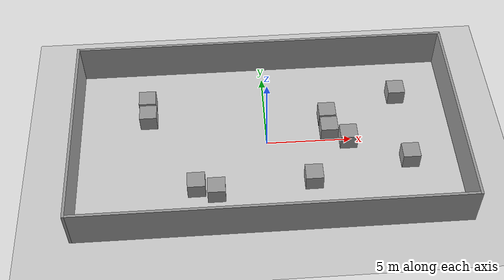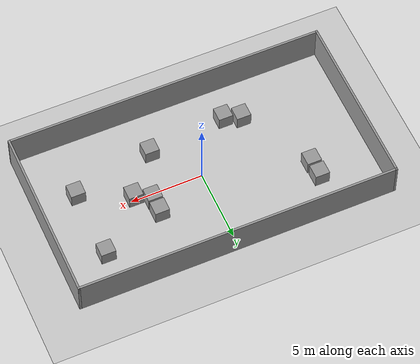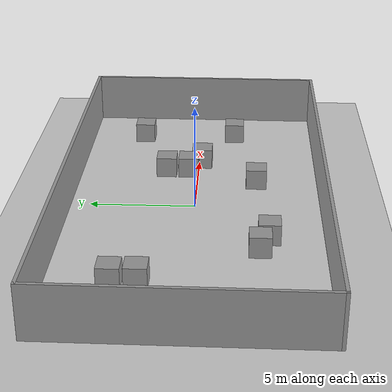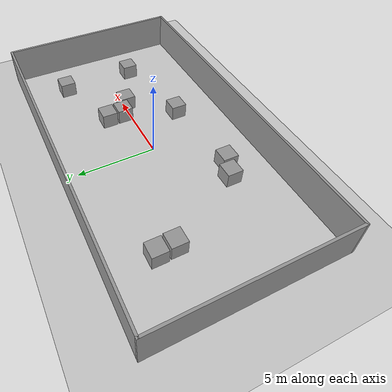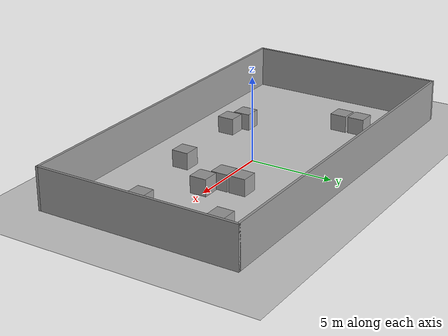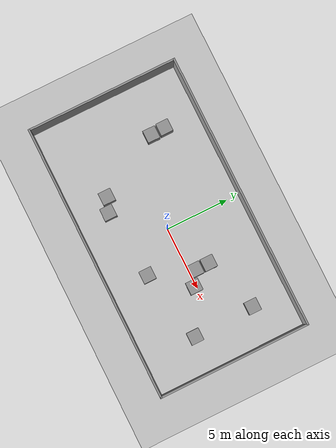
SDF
<sdf version="1.7">
 <world name="default">
  <light name="sun" type="directional">
   <pose>0 0 10 0 -0 0</pose>
   <diffuse>0.8 0.8 0.8 1</diffuse>
   <specular>0.2 0.2 0.2 1</specular>
   <attenuation>
    <range>1000</range>
    <constant>0.9</constant>
    <linear>0.01</linear>
    <quadratic>0.001</quadratic>
   </attenuation>
   <direction>-0.5 0.1 -0.9</direction>
   <spot><inner_angle>0</inner_angle><outer_angle>0</outer_angle><falloff>0</falloff></spot>
  </light>
  <model name="ground_plane">
   <static>1</static>
   <link name="link">
    <collision name="collision">
     <geometry><plane><normal>0 0 1</normal><size>100 100</size></plane></geometry>
     <surface>
      <contact><collide_bitmask>65535</collide_bitmask></contact>
      <friction><ode><mu>100</mu><mu2>50</mu2></ode></friction>
     </surface>
    </collision>
    <visual name="visual">
     <cast_shadows>0</cast_shadows>
     <geometry><plane><normal>0 0 1</normal><size>100 100</size></plane></geometry>
     <material>
      <script><uri>file://media/materials/scripts/gazebo.material</uri><name>Gazebo/Grey</name></script>
     </material>
    </visual>
   </link>
  </model>
  <gravity>0 0 -9.8</gravity>
  <magnetic_field>6e-06 2.3e-05 -4.2e-05</magnetic_field>
  <atmosphere type="adiabatic"/>
  <physics type="ode">
   <max_step_size>0.001</max_step_size>
   <real_time_factor>1</real_time_factor>
   <real_time_update_rate>1000</real_time_update_rate>
  </physics>
  <scene><ambient>0.4 0.4 0.4 1</ambient><background>0.7 0.7 0.7 1</background><shadows>1</shadows></scene>
  <spherical_coordinates>
   <surface_model>EARTH_WGS84</surface_model>
   <latitude_deg>0</latitude_deg>
   <longitude_deg>0</longitude_deg>
   <elevation>0</elevation>
   <heading_deg>0</heading_deg>
  </spherical_coordinates>
  <model name="Crossing">
   <link name="Wall_0">
    <collision name="Wall_0_Collision">
     <geometry><box><size>12.15 0.15 2.5</size></box></geometry>
     <pose>0 0 1.25 0 -0 0</pose>
    </collision>
    <visual name="Wall_0_Visual">
     <pose>0 0 1.25 0 -0 0</pose>
     <geometry><box><size>12.15 0.15 2.5</size></box></geometry>
     <material>
      <script><uri>file://media/materials/scripts/gazebo.material</uri><name>Gazebo/Grey</name></script>
      <ambient>1 1 1 1</ambient>
     </material>
     <meta><layer>0</layer></meta>
    </visual>
    <pose>-11 0 0 0 -0 1.5708</pose>
   </link>
   <link name="Wall_1">
    <collision name="Wall_1_Collision">
     <geometry><box><size>22.15 0.15 2.5</size></box></geometry>
     <pose>0 0 1.25 0 -0 0</pose>
    </collision>
    <visual name="Wall_1_Visual">
     <pose>0 0 1.25 0 -0 0</pose>
     <geometry><box><size>22.15 0.15 2.5</size></box></geometry>
     <material>
      <script><uri>file://media/materials/scripts/gazebo.material</uri><name>Gazebo/Grey</name></script>
      <ambient>1 1 1 1</ambient>
     </material>
     <meta><layer>0</layer></meta>
    </visual>
    <pose>0 6 0 0 -0 0</pose>
   </link>
   <link name="Wall_2">
    <collision name="Wall_2_Collision">
     <geometry><box><size>12.15 0.15 2.5</size></box></geometry>
     <pose>0 0 1.25 0 -0 0</pose>
    </collision>
    <visual name="Wall_2_Visual">
     <pose>0 0 1.25 0 -0 0</pose>
     <geometry><box><size>12.15 0.15 2.5</size></box></geometry>
     <material>
      <script><uri>file://media/materials/scripts/gazebo.material</uri><name>Gazebo/Grey</name></script>
      <ambient>1 1 1 1</ambient>
     </material>
     <meta><layer>0</layer></meta>
    </visual>
    <pose>11 0 0 0 -0 -1.5708</pose>
   </link>
   <link name="Wall_3">
    <collision name="Wall_3_Collision">
     <geometry><box><size>22.15 0.15 2.5</size></box></geometry>
     <pose>0 0 1.25 0 -0 0</pose>
    </collision>
    <visual name="Wall_3_Visual">
     <pose>0 0 1.25 0 -0 0</pose>
     <geometry><box><size>22.15 0.15 2.5</size></box></geometry>
     <material>
      <script><uri>file://media/materials/scripts/gazebo.material</uri><name>Gazebo/Grey</name></script>
      <ambient>1 1 1 1</ambient>
     </material>
     <meta><layer>0</layer></meta>
    </visual>
    <pose>0 -6 0 0 -0 3.14159</pose>
   </link>
   <static>1</static>
  </model>
  <model name="unit_box">
   <pose>3.69172 0.489303 0.5 0 -0 0</pose>
   <link name="link">
    <inertial>
     <mass>1</mass>
     <inertia>
      <ixx>0.166667</ixx>
      <ixy>0</ixy>
      <ixz>0</ixz>
      <iyy>0.166667</iyy>
      <iyz>0</iyz>
      <izz>0.166667</izz>
     </inertia>
    </inertial>
    <collision name="collision"><geometry><box><size>1 1 1</size></box></geometry></collision>
    <visual name="visual">
     <geometry><box><size>1 1 1</size></box></geometry>
     <material>
      <script><name>Gazebo/Grey</name><uri>file://media/materials/scripts/gazebo.material</uri></script>
     </material>
    </visual>
   </link>
  </model>
  <model name="unit_box_0">
   <pose>3.68233 1.59479 0.5 0 -0 0</pose>
   <link name="link">
    <inertial>
     <mass>1</mass>
     <inertia>
      <ixx>0.166667</ixx>
      <ixy>0</ixy>
      <ixz>0</ixz>
      <iyy>0.166667</iyy>
      <iyz>0</iyz>
      <izz>0.166667</izz>
     </inertia>
    </inertial>
    <collision name="collision"><geometry><box><size>1 1 1</size></box></geometry></collision>
    <visual name="visual">
     <geometry><box><size>1 1 1</size></box></geometry>
     <material>
      <script><name>Gazebo/Grey</name><uri>file://media/materials/scripts/gazebo.material</uri></script>
     </material>
    </visual>
   </link>
  </model>
  <model name="unit_box_1">
   <pose>4.76807 -0.152984 0.5 0 -0 0</pose>
   <link name="link">
    <inertial>
     <mass>1</mass>
     <inertia>
      <ixx>0.166667</ixx>
      <ixy>0</ixy>
      <ixz>0</ixz>
      <iyy>0.166667</iyy>
      <iyz>0</iyz>
      <izz>0.166667</izz>
     </inertia>
    </inertial>
    <collision name="collision"><geometry><box><size>1 1 1</size></box></geometry></collision>
    <visual name="visual">
     <geometry><box><size>1 1 1</size></box></geometry>
     <material>
      <script><name>Gazebo/Grey</name><uri>file://media/materials/scripts/gazebo.material</uri></script>
     </material>
    </visual>
   </link>
  </model>
  <model name="unit_box_2">
   <pose>8.03339 3.08439 0.5 0 -0 0</pose>
   <link name="link">
    <inertial>
     <mass>1</mass>
     <inertia>
      <ixx>0.166667</ixx>
      <ixy>0</ixy>
      <ixz>0</ixz>
      <iyy>0.166667</iyy>
      <iyz>0</iyz>
      <izz>0.166667</izz>
     </inertia>
    </inertial>
    <collision name="collision"><geometry><box><size>1 1 1</size></box></geometry></collision>
    <visual name="visual">
     <geometry><box><size>1 1 1</size></box></geometry>
     <material>
      <script><name>Gazebo/Grey</name><uri>file://media/materials/scripts/gazebo.material</uri></script>
     </material>
    </visual>
   </link>
  </model>
  <model name="unit_box_3">
   <pose>-6.95259 3.17513 0.5 0 -0 0</pose>
   <link name="link">
    <inertial>
     <mass>1</mass>
     <inertia>
      <ixx>0.166667</ixx>
      <ixy>0</ixy>
      <ixz>0</ixz>
      <iyy>0.166667</iyy>
      <iyz>0</iyz>
      <izz>0.166667</izz>
     </inertia>
    </inertial>
    <collision name="collision"><geometry><box><size>1 1 1</size></box></geometry></collision>
    <visual name="visual">
     <geometry><box><size>1 1 1</size></box></geometry>
     <material>
      <script><name>Gazebo/Grey</name><uri>file://media/materials/scripts/gazebo.material</uri></script>
     </material>
    </visual>
   </link>
  </model>
  <model name="unit_box_4">
   <pose>-6.9015 2.0573 0.5 0 -0 0</pose>
   <link name="link">
    <inertial>
     <mass>1</mass>
     <inertia>
      <ixx>0.166667</ixx>
      <ixy>0</ixy>
      <ixz>0</ixz>
      <iyy>0.166667</iyy>
      <iyz>0</iyz>
      <izz>0.166667</izz>
     </inertia>
    </inertial>
    <collision name="collision"><geometry><box><size>1 1 1</size></box></geometry></collision>
    <visual name="visual">
     <geometry><box><size>1 1 1</size></box></geometry>
     <material>
      <script><name>Gazebo/Grey</name><uri>file://media/materials/scripts/gazebo.material</uri></script>
     </material>
    </visual>
   </link>
  </model>
  <model name="unit_box_5">
   <pose>-3.03624 -3.45967 0.5 0 -0 0</pose>
   <link name="link">
    <inertial>
     <mass>1</mass>
     <inertia>
      <ixx>0.166667</ixx>
      <ixy>0</ixy>
      <ixz>0</ixz>
      <iyy>0.166667</iyy>
      <iyz>0</iyz>
      <izz>0.166667</izz>
     </inertia>
    </inertial>
    <collision name="collision"><geometry><box><size>1 1 1</size></box></geometry></collision>
    <visual name="visual">
     <geometry><box><size>1 1 1</size></box></geometry>
     <material>
      <script><name>Gazebo/Grey</name><uri>file://media/materials/scripts/gazebo.material</uri></script>
     </material>
    </visual>
   </link>
  </model>
  <model name="unit_box_6">
   <pose>-4.15202 -3.03463 0.5 0 -0 0</pose>
   <link name="link">
    <inertial>
     <mass>1</mass>
     <inertia>
      <ixx>0.166667</ixx>
      <ixy>0</ixy>
      <ixz>0</ixz>
      <iyy>0.166667</iyy>
      <iyz>0</iyz>
      <izz>0.166667</izz>
     </inertia>
    </inertial>
    <collision name="collision"><geometry><box><size>1 1 1</size></box></geometry></collision>
    <visual name="visual">
     <geometry><box><size>1 1 1</size></box></geometry>
     <material>
      <script><name>Gazebo/Grey</name><uri>file://media/materials/scripts/gazebo.material</uri></script>
     </material>
    </visual>
   </link>
  </model>
  <model name="unit_box_7">
   <pose>2.47454 -2.9108 0.5 0 -0 0</pose>
   <link name="link">
    <inertial>
     <mass>1</mass>
     <inertia>
      <ixx>0.166667</ixx>
      <ixy>0</ixy>
      <ixz>0</ixz>
      <iyy>0.166667</iyy>
      <iyz>0</iyz>
      <izz>0.166667</izz>
     </inertia>
    </inertial>
    <collision name="collision"><geometry><box><size>1 1 1</size></box></geometry></collision>
    <visual name="visual">
     <geometry><box><size>1 1 1</size></box></geometry>
     <material>
      <script><name>Gazebo/Grey</name><uri>file://media/materials/scripts/gazebo.material</uri></script>
     </material>
    </visual>
   </link>
  </model>
  <model name="unit_box_8">
   <pose>8.1451 -1.76928 0.5 0 -0 0</pose>
   <link name="link">
    <inertial>
     <mass>1</mass>
     <inertia>
      <ixx>0.166667</ixx>
      <ixy>0</ixy>
      <ixz>0</ixz>
      <iyy>0.166667</iyy>
      <iyz>0</iyz>
      <izz>0.166667</izz>
     </inertia>
    </inertial>
    <collision name="collision"><geometry><box><size>1 1 1</size></box></geometry></collision>
    <visual name="visual">
     <geometry><box><size>1 1 1</size></box></geometry>
     <material>
      <script><name>Gazebo/Grey</name><uri>file://media/materials/scripts/gazebo.material</uri></script>
     </material>
    </visual>
   </link>
  </model>
 </world>
</sdf>
